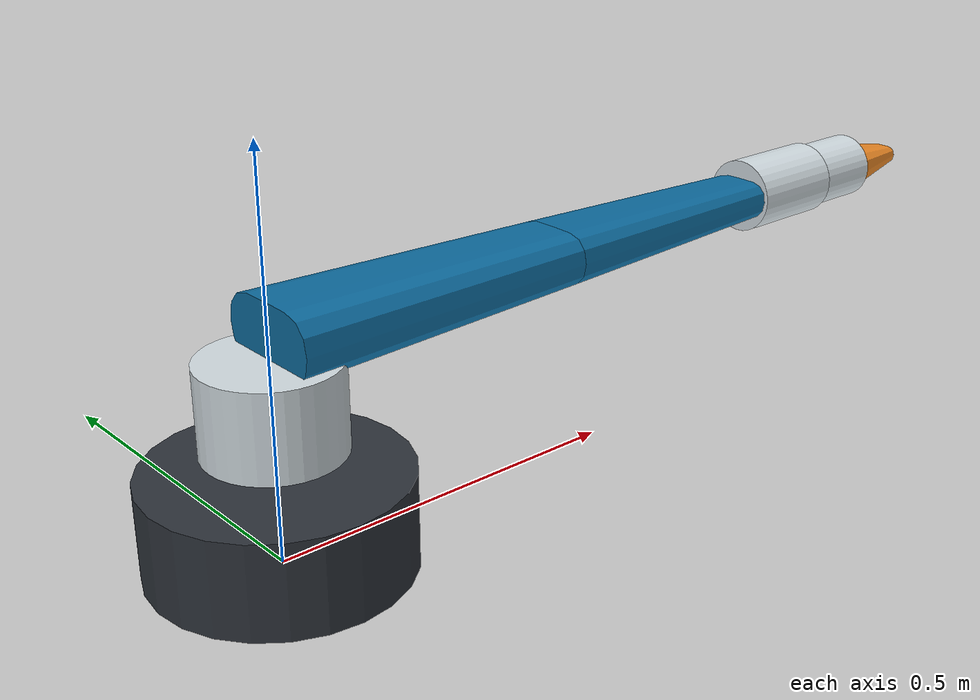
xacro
<?xml version="1.0"?>
<robot xmlns:xacro="http://www.ros.org/wiki/xacro" name="aim_arm">
  <xacro:arg name="enable_ros2_control" default="false"/>
  <xacro:arg name="ros2_control_config" default="package://aim_arm_description/config/ros2_controllers.yaml"/>

  <xacro:property name="aim_pi" value="3.141592653589793"/>

  <xacro:property name="base_height" value="0.12"/>
  <xacro:property name="base_radius" value="0.16"/>
  <xacro:property name="shoulder_height" value="0.16"/>
  <xacro:property name="upper_arm_length" value="0.42"/>
  <xacro:property name="forearm_length" value="0.36"/>
  <xacro:property name="wrist_length" value="0.14"/>
  <xacro:property name="tool_length" value="0.10"/>

  <material name="mat_base">
    <color rgba="0.18 0.20 0.23 1.0"/>
  </material>
  <material name="mat_link">
    <color rgba="0.05 0.42 0.62 1.0"/>
  </material>
  <material name="mat_joint">
    <color rgba="0.82 0.86 0.88 1.0"/>
  </material>
  <material name="mat_tool">
    <color rgba="0.95 0.55 0.15 1.0"/>
  </material>

  <xacro:macro name="box_inertia" params="mass x y z">
    <inertial>
      <mass value="${mass}"/>
      <origin xyz="0 0 0" rpy="0 0 0"/>
      <inertia
        ixx="${mass * (y * y + z * z) / 12.0}"
        ixy="0.0"
        ixz="0.0"
        iyy="${mass * (x * x + z * z) / 12.0}"
        iyz="0.0"
        izz="${mass * (x * x + y * y) / 12.0}"/>
    </inertial>
  </xacro:macro>

  <xacro:macro name="cylinder_inertia" params="mass radius length axis">
    <inertial>
      <mass value="${mass}"/>
      <origin xyz="0 0 0" rpy="0 0 0"/>
      <xacro:if value="${axis == 'z'}">
        <inertia
          ixx="${mass * (3.0 * radius * radius + length * length) / 12.0}"
          ixy="0.0"
          ixz="0.0"
          iyy="${mass * (3.0 * radius * radius + length * length) / 12.0}"
          iyz="0.0"
          izz="${mass * radius * radius / 2.0}"/>
      </xacro:if>
      <xacro:if value="${axis == 'x'}">
        <inertia
          ixx="${mass * radius * radius / 2.0}"
          ixy="0.0"
          ixz="0.0"
          iyy="${mass * (3.0 * radius * radius + length * length) / 12.0}"
          iyz="0.0"
          izz="${mass * (3.0 * radius * radius + length * length) / 12.0}"/>
      </xacro:if>
    </inertial>
  </xacro:macro>

  <xacro:macro name="visual_collision_box" params="size material">
    <visual>
      <origin xyz="0 0 0" rpy="0 0 0"/>
      <geometry>
        <box size="${size}"/>
      </geometry>
      <material name="${material}"/>
    </visual>
    <collision>
      <origin xyz="0 0 0" rpy="0 0 0"/>
      <geometry>
        <box size="${size}"/>
      </geometry>
    </collision>
  </xacro:macro>

  <xacro:macro name="visual_collision_cylinder" params="radius length material">
    <visual>
      <origin xyz="0 0 0" rpy="0 0 0"/>
      <geometry>
        <cylinder radius="${radius}" length="${length}"/>
      </geometry>
      <material name="${material}"/>
    </visual>
    <collision>
      <origin xyz="0 0 0" rpy="0 0 0"/>
      <geometry>
        <cylinder radius="${radius}" length="${length}"/>
      </geometry>
    </collision>
  </xacro:macro>

  <link name="world"/>

  <joint name="world_to_base" type="fixed">
    <parent link="world"/>
    <child link="base_link"/>
    <origin xyz="0 0 ${base_height / 2.0}" rpy="0 0 0"/>
  </joint>

  <link name="base_link">
    <xacro:cylinder_inertia mass="8.0" radius="${base_radius}" length="${base_height}" axis="z"/>
    <xacro:visual_collision_cylinder radius="${base_radius}" length="${base_height}" material="mat_base"/>
  </link>
  <gazebo reference="base_link">
    <material>Gazebo/DarkGrey</material>
  </gazebo>

  <joint name="shoulder_pan_joint" type="revolute">
    <parent link="base_link"/>
    <child link="shoulder_link"/>
    <origin xyz="0 0 ${base_height / 2.0 + shoulder_height / 2.0}" rpy="0 0 0"/>
    <axis xyz="0 0 1"/>
    <limit lower="${-pi}" upper="${aim_pi}" effort="70.0" velocity="1.5"/>
    <dynamics damping="0.08" friction="0.02"/>
  </joint>

  <link name="shoulder_link">
    <xacro:cylinder_inertia mass="4.0" radius="0.09" length="${shoulder_height}" axis="z"/>
    <visual>
      <origin xyz="0 0 0" rpy="0 ${aim_pi / 2.0} 0"/>
      <geometry>
        <mesh filename="package://aim_arm_description/meshes/visual/joint_cap_visual.stl"/>
      </geometry>
      <material name="mat_joint"/>
    </visual>
    <collision>
      <origin xyz="0 0 0" rpy="0 0 0"/>
      <geometry>
        <cylinder radius="0.09" length="${shoulder_height}"/>
      </geometry>
    </collision>
  </link>
  <gazebo reference="shoulder_link">
    <material>Gazebo/White</material>
  </gazebo>

  <joint name="shoulder_lift_joint" type="revolute">
    <parent link="shoulder_link"/>
    <child link="upper_arm_link"/>
    <origin xyz="0 0 ${shoulder_height / 2.0}" rpy="0 0 0"/>
    <axis xyz="0 1 0"/>
    <limit lower="-2.35619" upper="2.35619" effort="80.0" velocity="1.3"/>
    <dynamics damping="0.10" friction="0.03"/>
  </joint>

  <link name="upper_arm_link">
    <xacro:box_inertia mass="3.2" x="${upper_arm_length}" y="0.08" z="0.08"/>
    <visual>
      <origin xyz="0 0 0" rpy="0 0 0"/>
      <geometry>
        <mesh filename="package://aim_arm_description/meshes/visual/upper_arm_visual.stl"/>
      </geometry>
      <material name="mat_link"/>
    </visual>
    <collision>
      <origin xyz="${upper_arm_length / 2.0} 0 0" rpy="0 0 0"/>
      <geometry>
        <box size="${upper_arm_length} 0.08 0.08"/>
      </geometry>
    </collision>
  </link>
  <gazebo reference="upper_arm_link">
    <material>Gazebo/Blue</material>
  </gazebo>

  <joint name="elbow_joint" type="revolute">
    <parent link="upper_arm_link"/>
    <child link="forearm_link"/>
    <origin xyz="${upper_arm_length} 0 0" rpy="0 0 0"/>
    <axis xyz="0 1 0"/>
    <limit lower="-2.61799" upper="2.61799" effort="60.0" velocity="1.5"/>
    <dynamics damping="0.08" friction="0.02"/>
  </joint>

  <link name="forearm_link">
    <xacro:box_inertia mass="2.4" x="${forearm_length}" y="0.065" z="0.065"/>
    <visual>
      <origin xyz="0 0 0" rpy="0 0 0"/>
      <geometry>
        <mesh filename="package://aim_arm_description/meshes/visual/forearm_visual.stl"/>
      </geometry>
      <material name="mat_link"/>
    </visual>
    <collision>
      <origin xyz="${forearm_length / 2.0} 0 0" rpy="0 0 0"/>
      <geometry>
        <box size="${forearm_length} 0.065 0.065"/>
      </geometry>
    </collision>
  </link>
  <gazebo reference="forearm_link">
    <material>Gazebo/Blue</material>
  </gazebo>

  <joint name="wrist_pitch_joint" type="revolute">
    <parent link="forearm_link"/>
    <child link="wrist_pitch_link"/>
    <origin xyz="${forearm_length} 0 0" rpy="0 0 0"/>
    <axis xyz="0 1 0"/>
    <limit lower="${-pi}" upper="${aim_pi}" effort="25.0" velocity="2.0"/>
    <dynamics damping="0.05" friction="0.01"/>
  </joint>

  <link name="wrist_pitch_link">
    <xacro:cylinder_inertia mass="0.9" radius="0.055" length="${wrist_length}" axis="x"/>
    <visual>
      <origin xyz="${wrist_length / 2.0} 0 0" rpy="0 0 0"/>
      <geometry>
        <mesh filename="package://aim_arm_description/meshes/visual/wrist_visual.stl" scale="0.875 1 1"/>
      </geometry>
      <material name="mat_joint"/>
    </visual>
    <collision>
      <origin xyz="${wrist_length / 2.0} 0 0" rpy="0 ${aim_pi / 2.0} 0"/>
      <geometry>
        <cylinder radius="0.055" length="${wrist_length}"/>
      </geometry>
    </collision>
  </link>
  <gazebo reference="wrist_pitch_link">
    <material>Gazebo/White</material>
  </gazebo>

  <joint name="wrist_roll_joint" type="revolute">
    <parent link="wrist_pitch_link"/>
    <child link="wrist_roll_link"/>
    <origin xyz="${wrist_length} 0 0" rpy="0 0 0"/>
    <axis xyz="1 0 0"/>
    <limit lower="${-pi}" upper="${aim_pi}" effort="20.0" velocity="2.0"/>
    <dynamics damping="0.04" friction="0.01"/>
  </joint>

  <link name="wrist_roll_link">
    <xacro:cylinder_inertia mass="0.7" radius="0.045" length="0.10" axis="x"/>
    <visual>
      <origin xyz="0.05 0 0" rpy="0 0 0"/>
      <geometry>
        <mesh filename="package://aim_arm_description/meshes/visual/wrist_visual.stl" scale="0.625 0.9 0.9"/>
      </geometry>
      <material name="mat_joint"/>
    </visual>
    <collision>
      <origin xyz="0.05 0 0" rpy="0 ${aim_pi / 2.0} 0"/>
      <geometry>
        <cylinder radius="0.045" length="0.10"/>
      </geometry>
    </collision>
  </link>
  <gazebo reference="wrist_roll_link">
    <material>Gazebo/White</material>
  </gazebo>

  <joint name="wrist_yaw_joint" type="revolute">
    <parent link="wrist_roll_link"/>
    <child link="tool_link"/>
    <origin xyz="0.10 0 0" rpy="0 0 0"/>
    <axis xyz="0 0 1"/>
    <limit lower="${-pi}" upper="${aim_pi}" effort="20.0" velocity="2.0"/>
    <dynamics damping="0.04" friction="0.01"/>
  </joint>

  <link name="tool_link">
    <xacro:box_inertia mass="0.4" x="${tool_length}" y="0.04" z="0.04"/>
    <visual>
      <origin xyz="0 0 0" rpy="0 0 0"/>
      <geometry>
        <mesh filename="package://aim_arm_description/meshes/visual/tool_visual.stl" scale="0.625 1 1"/>
      </geometry>
      <material name="mat_tool"/>
    </visual>
    <collision>
      <origin xyz="${tool_length / 2.0} 0 0" rpy="0 0 0"/>
      <geometry>
        <box size="${tool_length} 0.04 0.04"/>
      </geometry>
    </collision>
  </link>
  <gazebo reference="tool_link">
    <material>Gazebo/Orange</material>
  </gazebo>

  <joint name="tool0_fixed_joint" type="fixed">
    <parent link="tool_link"/>
    <child link="tool0"/>
    <origin xyz="${tool_length} 0 0" rpy="0 0 0"/>
  </joint>

  <link name="tool0"/>

  <xacro:if value="$(arg enable_ros2_control)">
    <ros2_control name="AimArmSystem" type="system">
      <hardware>
        <plugin>gazebo_ros2_control/GazeboSystem</plugin>
      </hardware>
      <joint name="shoulder_pan_joint">
        <command_interface name="position">
          <param name="min">-3.14159</param>
          <param name="max">3.14159</param>
        </command_interface>
        <state_interface name="position"/>
        <state_interface name="velocity"/>
      </joint>
      <joint name="shoulder_lift_joint">
        <command_interface name="position">
          <param name="min">-2.35619</param>
          <param name="max">2.35619</param>
        </command_interface>
        <state_interface name="position"/>
        <state_interface name="velocity"/>
      </joint>
      <joint name="elbow_joint">
        <command_interface name="position">
          <param name="min">-2.61799</param>
          <param name="max">2.61799</param>
        </command_interface>
        <state_interface name="position"/>
        <state_interface name="velocity"/>
      </joint>
      <joint name="wrist_pitch_joint">
        <command_interface name="position">
          <param name="min">-3.14159</param>
          <param name="max">3.14159</param>
        </command_interface>
        <state_interface name="position"/>
        <state_interface name="velocity"/>
      </joint>
      <joint name="wrist_roll_joint">
        <command_interface name="position">
          <param name="min">-3.14159</param>
          <param name="max">3.14159</param>
        </command_interface>
        <state_interface name="position"/>
        <state_interface name="velocity"/>
      </joint>
      <joint name="wrist_yaw_joint">
        <command_interface name="position">
          <param name="min">-3.14159</param>
          <param name="max">3.14159</param>
        </command_interface>
        <state_interface name="position"/>
        <state_interface name="velocity"/>
      </joint>
    </ros2_control>

    <gazebo>
      <plugin filename="libgazebo_ros2_control.so" name="gazebo_ros2_control">
        <parameters>$(arg ros2_control_config)</parameters>
      </plugin>
    </gazebo>
  </xacro:if>
</robot>
